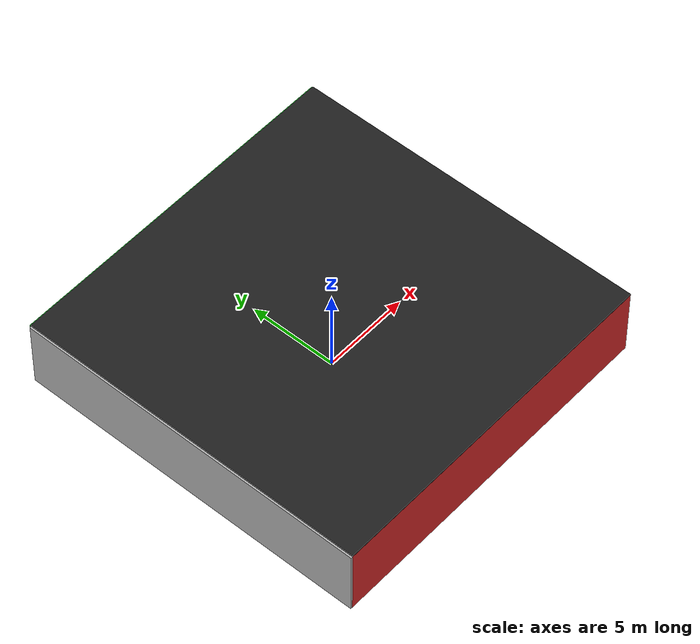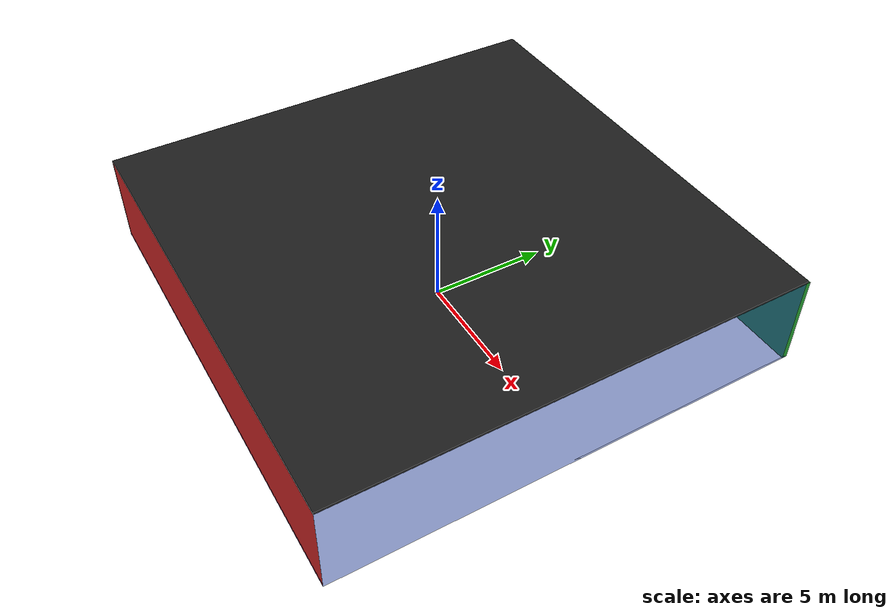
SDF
<sdf version="1.4">
 <world name="default">
  <physics type="ode">
   <max_step_size>0.001</max_step_size>
   <real_time_factor>1</real_time_factor>
   <real_time_update_rate>1000</real_time_update_rate>
   <gravity>0 0 -9.8</gravity>
  </physics>
  <scene><ambient>0.4 0.4 0.4 1</ambient><background>0.7 0.7 0.7 1</background><shadows>1</shadows></scene>
  <model name="Surrounding">
   <static>1</static>
   <link name="Ceiling">
    <collision name="Ceiling_Collision"><geometry><box><size>20 20 0.1</size></box></geometry></collision>
    <visual name="Ceiling_Visual">
     <geometry><box><size>20 20 0.1</size></box></geometry>
     <material>
      <script><uri>file://media/materials/scripts/gazebo.material</uri><name>Gazebo/FlatBlack</name></script>
     </material>
    </visual>
    <pose>0 0 4.05 0 0 0</pose>
   </link>
   <link name="Wall_South">
    <collision name="Wall_South_Collision">
     <geometry><box><size>20 0 4</size></box></geometry>
     <pose>0 0 2 0 -0 0</pose>
    </collision>
    <visual name="Wall_South_Visual">
     <pose>0 0 2 0 -0 0</pose>
     <geometry><box><size>20 0 4</size></box></geometry>
     <material>
      <script><uri>file://media/materials/scripts/gazebo.material</uri><name>Gazebo/Red</name></script>
     </material>
    </visual>
    <velocity_decay><linear>0</linear><angular>0</angular></velocity_decay>
    <pose>0 -10 0 0 -0 0</pose>
   </link>
   <link name="Wall_East">
    <collision name="Wall_21_Collision">
     <geometry><box><size>20 0 4</size></box></geometry>
     <pose>0 0 2 0 -0 0</pose>
    </collision>
    <visual name="Wall_21_Visual">
     <pose>0 0 2 0 -0 0</pose>
     <geometry><box><size>20 0 4</size></box></geometry>
     <material>
      <script><uri>file://media/materials/scripts/gazebo.material</uri><name>Gazebo/BlueTransparent</name></script>
     </material>
    </visual>
    <velocity_decay><linear>0</linear><angular>0</angular></velocity_decay>
    <pose>10 0 0 0 -0 1.5708</pose>
   </link>
   <link name="Wall_North">
    <collision name="Wall_22_Collision">
     <geometry><box><size>20 0.2 4</size></box></geometry>
     <pose>0 0 2 0 -0 0</pose>
    </collision>
    <visual name="Wall_22_Visual">
     <pose>0 0 2 0 -0 0</pose>
     <geometry><box><size>20 0.2 4</size></box></geometry>
     <material>
      <script><uri>file://media/materials/scripts/gazebo.material</uri><name>Gazebo/Green</name></script>
     </material>
    </visual>
    <velocity_decay><linear>0</linear><angular>0</angular></velocity_decay>
    <pose>0 10 0 0 -0 0</pose>
   </link>
   <link name="Wall_West">
    <collision name="Wall_23_Collision">
     <geometry><box><size>20 0.2 4</size></box></geometry>
     <pose>0 0 2 0 -0 0</pose>
    </collision>
    <visual name="Wall_23_Visual">
     <pose>0 0 2 0 -0 0</pose>
     <geometry><box><size>20 0.2 4</size></box></geometry>
     <material>
      <script><uri>file://media/materials/scripts/gazebo.material</uri><name>Gazebo/LightOff</name></script>
     </material>
    </visual>
    <velocity_decay><linear>0</linear><angular>0</angular></velocity_decay>
    <pose>-10 0 0 0 0 -1.5708</pose>
   </link>
   <link name="Ground_link">
    <collision name="collision">
     <pose>0 0 .05 0 -0 0</pose>
     <geometry><box><size>20 20 0.1</size></box></geometry>
    </collision>
    <visual name="visual">
     <pose>0 0 .05 0 -0 0</pose>
     <geometry><box><size>20 20 0.1</size></box></geometry>
     <material>
      <script><uri>file://media/materials/scripts/gazebo.material</uri><name>Gazebo/BlueTransparent</name></script>
     </material>
    </visual>
   </link>
   <static>1</static>
  </model>
  <spherical_coordinates>
   <surface_model>EARTH_WGS84</surface_model>
   <latitude_deg>0</latitude_deg>
   <longitude_deg>0</longitude_deg>
   <elevation>0</elevation>
   <heading_deg>0</heading_deg>
  </spherical_coordinates>
  <light name="lightball_0" type="diffuse">
   <diffuse>0.8 0.8 0.8 1</diffuse>
   <specular>0.2 0.2 0.2 1</specular>
   <attenuation>
    <range>100</range>
    <constant>0.7</constant>
    <linear>0.01</linear>
    <quadratic>0.001</quadratic>
   </attenuation>
   <direction>-0.5 0.1 -0.9</direction>
   <pose>-8.88074326365 4.90073605051 2.21530852857 0 0 0</pose>
  </light>
  <light name="lightball_1" type="diffuse">
   <diffuse>0.8 0.8 0.8 1</diffuse>
   <specular>0.2 0.2 0.2 1</specular>
   <attenuation>
    <range>100</range>
    <constant>0.7</constant>
    <linear>0.01</linear>
    <quadratic>0.001</quadratic>
   </attenuation>
   <direction>-0.5 0.1 -0.9</direction>
   <pose>-7.17872975619 7.90429247485 1.23019009181 0 0 0</pose>
  </light>
  <light name="lightball_2" type="diffuse">
   <diffuse>0.8 0.8 0.8 1</diffuse>
   <specular>0.2 0.2 0.2 1</specular>
   <attenuation>
    <range>100</range>
    <constant>0.7</constant>
    <linear>0.01</linear>
    <quadratic>0.001</quadratic>
   </attenuation>
   <direction>-0.5 0.1 -0.9</direction>
   <pose>9.9652614825 3.06464979167 2.44051601712 0 0 0</pose>
  </light>
  <light name="lightball_3" type="diffuse">
   <diffuse>0.8 0.8 0.8 1</diffuse>
   <specular>0.2 0.2 0.2 1</specular>
   <attenuation>
    <range>100</range>
    <constant>0.7</constant>
    <linear>0.01</linear>
    <quadratic>0.001</quadratic>
   </attenuation>
   <direction>-0.5 0.1 -0.9</direction>
   <pose>-5.00684570293 5.8220607521 1.28207042817 0 0 0</pose>
  </light>
  <light name="lightball_4" type="diffuse">
   <diffuse>0.8 0.8 0.8 1</diffuse>
   <specular>0.2 0.2 0.2 1</specular>
   <attenuation>
    <range>100</range>
    <constant>0.7</constant>
    <linear>0.01</linear>
    <quadratic>0.001</quadratic>
   </attenuation>
   <direction>-0.5 0.1 -0.9</direction>
   <pose>5.06308697375 3.51844112401 2.59139829326 0 0 0</pose>
  </light>
  <include>
   <uri>model://construction_cone</uri>
   <pose>-8.18905903232 -6.85209737734 0 0 0 2.92070712674</pose>
  </include>
  <include>
   <uri>model://robocup_3Dsim_goal</uri>
   <pose>-1.03340355467 -3.7352509652 0 0 0 0.727950823471</pose>
  </include>
  <include>
   <uri>model://construction_cone</uri>
   <pose>2.02133002733 -4.7413719937 0 0 0 2.83511846008</pose>
  </include>
  <include><uri>model://cabinet</uri><pose>1.45684958677 -1.42000302741 0 0 0 0.161300939979</pose></include>
  <include><uri>model://cabinet</uri><pose>1.23470209181 4.36417788833 0 0 0 0.403057650508</pose></include>
 </world>
</sdf>

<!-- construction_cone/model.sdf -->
<sdf version="1.5">
  <model name="Construction Cone">
    <link name="link">
      <collision name="collision">
        <geometry>
          <mesh>
            <scale>10 10 10</scale>
            <uri>file://isr-testbed/construction_cone/meshes/construction_cone.dae</uri>
          </mesh>
        </geometry>
      </collision>
      <visual name="visual">
        <geometry>
          <mesh>
            <scale>10 10 10</scale>
            <uri>file://isr-testbed/construction_cone/meshes/construction_cone.dae</uri>
          </mesh>
        </geometry>
      </visual>
    </link>
  </model>
</sdf>

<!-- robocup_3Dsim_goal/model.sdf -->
<sdf version="1.5">
  <model name="robocup_3d_goal">
    <static>true</static>
    <link name="left_post">
      <pose>0 1.05 0.45 0 0 0</pose>
      <collision name="collision">
        <geometry>
          <cylinder>
            <radius>0.05</radius>
            <length>0.9</length>
          </cylinder>
        </geometry>
      </collision>
      <visual name="visual">
        <geometry>
          <cylinder>
            <radius>0.05</radius>
            <length>0.9</length>
          </cylinder>
        </geometry>
        <material>
          <script>
            <uri>file://media/materials/scripts/gazebo.material</uri>
            <name>Gazebo/ZincYellow</name>
          </script>
        </material>
      </visual>
    </link>
    <link name="left_support_horiz_lower">
      <pose>0.30 1.05 0.01 0 0 0</pose>
      <collision name="collision">
        <geometry>
          <box>
            <size>0.50 0.02 0.02</size>
          </box>
        </geometry>
      </collision>
      <visual name="visual">
        <geometry>
          <box>
            <size>0.50 0.02 0.02</size>
          </box>
        </geometry>
        <material>
          <script>
            <uri>file://media/materials/scripts/gazebo.material</uri>
            <name>Gazebo/White</name>
          </script>
        </material>
      </visual>
    </link>
    <link name="left_support_horiz_upper">
      <pose>0.30 1.05 0.79 0 0 0</pose>
      <collision name="collision">
        <geometry>
          <box>
            <size>0.50 0.02 0.02</size>
          </box>
        </geometry>
      </collision>
      <visual name="visual">
        <geometry>
          <box>
            <size>0.50 0.02 0.02</size>
          </box>
        </geometry>
        <material>
          <script>
            <uri>file://media/materials/scripts/gazebo.material</uri>
            <name>Gazebo/White</name>
          </script>
        </material>
      </visual>
    </link>
    <link name="left_support_vertical">
      <pose>0.56 1.05 0.4 0 1.5708 0</pose>
      <collision name="collision">
        <geometry>
          <box>
            <size>0.80 0.02 0.02</size>
          </box>
        </geometry>
      </collision>
      <visual name="visual">
        <geometry>
          <box>
            <size>0.80 0.02 0.02</size>
          </box>
        </geometry>
        <material>
          <script>
            <uri>file://media/materials/scripts/gazebo.material</uri>
            <name>Gazebo/White</name>
          </script>
        </material>
      </visual>
    </link>
    <link name="right_support_horiz_lower">
      <pose>0.30 -1.05 0.01 0 0 0</pose>
      <collision name="collision">
        <geometry>
          <box>
            <size>0.50 0.02 0.02</size>
          </box>
        </geometry>
      </collision>
      <visual name="visual">
        <geometry>
          <box>
            <size>0.50 0.02 0.02</size>
          </box>
        </geometry>
        <material>
          <script>
            <uri>file://media/materials/scripts/gazebo.material</uri>
            <name>Gazebo/White</name>
          </script>
        </material>
      </visual>
    </link>
    <link name="right_support_horiz_upper">
      <pose>0.30 -1.05 0.79 0 0 0</pose>
      <collision name="collision">
        <geometry>
          <box>
            <size>0.50 0.02 0.02</size>
          </box>
        </geometry>
      </collision>
      <visual name="visual">
        <geometry>
          <box>
            <size>0.50 0.02 0.02</size>
          </box>
        </geometry>
        <material>
          <script>
            <uri>file://media/materials/scripts/gazebo.material</uri>
            <name>Gazebo/White</name>
          </script>
        </material>
      </visual>
    </link>
    <link name="right_support_vertical">
      <pose>0.56 -1.05 0.4 0 1.5708 0</pose>
      <collision name="collision">
        <geometry>
          <box>
            <size>0.80 0.02 0.02</size>
          </box>
        </geometry>
      </collision>
      <visual name="visual">
        <geometry>
          <box>
            <size>0.80 0.02 0.02</size>
          </box>
        </geometry>
        <material>
          <script>
            <uri>file://media/materials/scripts/gazebo.material</uri>
            <name>Gazebo/White</name>
          </script>
        </material>
      </visual>
    </link>
    <link name="center_support_horiz_lower">
      <pose>0.56 0 0.01 0 1.5708 0</pose>
      <collision name="collision">
        <geometry>
          <box>
            <size>0.02 2.08 0.02</size>
          </box>
        </geometry>
      </collision>
      <visual name="visual">
        <geometry>
          <box>
            <size>0.02 2.08 0.02</size>
          </box>
        </geometry>
        <material>
          <script>
            <uri>file://media/materials/scripts/gazebo.material</uri>
            <name>Gazebo/White</name>
          </script>
        </material>
      </visual>
    </link>
    <link name="center_support_horiz_upper">
      <pose>0.56 0 0.79 0 1.5708 0</pose>
      <collision name="collision">
        <geometry>
          <box>
            <size>0.02 2.08 0.02</size>
          </box>
        </geometry>
      </collision>
      <visual name="visual">
        <geometry>
          <box>
            <size>0.02 2.08 0.02</size>
          </box>
        </geometry>
        <material>
          <script>
            <uri>file://media/materials/scripts/gazebo.material</uri>
            <name>Gazebo/White</name>
          </script>
        </material>
      </visual>
    </link>
    <link name="right_post">
      <pose>0 -1.05 0.45 0 0 0</pose>
      <collision name="collision">
        <geometry>
          <cylinder>
            <radius>0.05</radius>
            <length>0.9</length>
          </cylinder>
        </geometry>
      </collision>
      <visual name="visual">
        <geometry>
          <cylinder>
            <radius>0.05</radius>
            <length>0.9</length>
          </cylinder>
        </geometry>
        <material>
          <script>
            <uri>file://media/materials/scripts/gazebo.material</uri>
            <name>Gazebo/ZincYellow</name>
          </script>
        </material>
      </visual>
    </link>
    <link name="crossbar">
      <pose>0 0 0.85 1.57 1.57 0</pose>
      <collision name="collision">
        <geometry>
          <cylinder>
            <radius>0.05</radius>
            <length>2.0</length>
          </cylinder>
        </geometry>
      </collision>
      <visual name="visual">
        <geometry>
          <cylinder>
            <radius>0.05</radius>
            <length>2.0</length>
          </cylinder>
        </geometry>
        <material>
          <script>
            <uri>file://media/materials/scripts/gazebo.material</uri>
            <name>Gazebo/ZincYellow</name>
          </script>
        </material>
      </visual>
    </link>
    <link name="center_net">
      <pose>0.56 0 0.40 0 0 0</pose>
      <collision name="collision">
        <geometry>
          <box>
            <size>0.01 2.1 0.80</size>
          </box>
        </geometry>
      </collision>
      <visual name="visual">
        <geometry>
          <box>
            <size>0.01 2.1 0.80</size>
          </box>
        </geometry>
        <material>
          <script>
            <uri>model://../model_source/models/robocup09_spl_field/materials/scripts/</uri>
            <uri>model://../model_source/models/robocup09_spl_field/materials/textures/</uri>
            <name>RoboCup/Net</name>
          </script>
        </material>
      </visual>
    </link>
    <link name="left_net">
      <pose>0.30 1.05 0.40 0 0 0</pose>
      <collision name="collision">
        <geometry>
          <box>
            <size>0.50 0.01 0.76</size>
          </box>
        </geometry>
      </collision>
      <visual name="visual">
        <geometry>
          <box>
            <size>0.50 0.01 0.76</size>
          </box>
        </geometry>
        <material>
          <script>
            <uri>model://../model_source/models/robocup09_spl_field/materials/scripts/</uri>
            <uri>model://../model_source/models/robocup09_spl_field/materials/textures/</uri>
            <name>RoboCup/Net</name>
          </script>
        </material>
      </visual>
    </link>
    <link name="right_net">
      <pose>0.30 -1.05 0.40 0 0 0</pose>
      <collision name="collision">
        <geometry>
          <box>
            <size>0.50 0.01 0.76</size>
          </box>
        </geometry>
      </collision>
      <visual name="visual">
        <geometry>
          <box>
            <size>0.50 0.01 0.76</size>
          </box>
        </geometry>
        <material>
          <script>
            <uri>model://../model_source/models/robocup09_spl_field/materials/scripts/</uri>
            <uri>model://../model_source/models/robocup09_spl_field/materials/textures/</uri>
            <name>RoboCup/Net</name>
          </script>
        </material>
      </visual>
    </link>
  </model>
</sdf>

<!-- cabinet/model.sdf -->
<sdf version="1.5">
  <model name="cabinet">
    <static>true</static>
    <link name="cabinet_bottom_plate">
      <inertial>
        <pose>0 0 -1 0 0 0</pose>
        <inertia>
          <ixx>2.050000</ixx>
          <ixy>0</ixy>
          <ixz>0</ixz>
          <iyy>2.050000</iyy>
          <iyz>0</iyz>
          <izz>2.050000</izz>
        </inertia>
        <mass>25.000000</mass>
      </inertial>
      <collision name="cabinet_bottom_plate_geom">
        <pose>0 0 0.010000 0 0 0</pose>
        <geometry>
          <box>
            <size>0.450000 0.450000 0.020000</size>
          </box>
        </geometry>
      </collision>
      <visual name="cabinet_bottom_plate_geom_visual">
        <pose>0 0 0.010000 0 0 0</pose>
        <geometry>
          <box>
            <size>0.450000 0.450000 0.020000</size>
          </box>
        </geometry>
        <material>
          <script>
            <uri>model://media/materials/scripts/gazebo.material</uri>
            <name>Gazebo/Wood</name>
          </script>
        </material>
      </visual>
      <collision name="cabinet_bottom_plate_geom_cabinet_back_plate">
        <pose>0.235000 0 0.510000 0 0 0</pose>
        <geometry>
          <box>
            <size>0.020000 0.450000 1.020000</size>
          </box>
        </geometry>
      </collision>
      <visual name="cabinet_bottom_plate_geom_cabinet_back_plate_visual">
        <pose>0.235000 0 0.510000 0 0 0</pose>
        <geometry>
          <box>
            <size>0.020000 0.450000 1.020000</size>
          </box>
        </geometry>
        <material>
          <script>
            <uri>model://media/materials/scripts/gazebo.material</uri>
            <name>Gazebo/Wood</name>
          </script>
        </material>
      </visual>
      <collision name="cabinet_bottom_plate_geom_cabinet_left_plate">
        <pose>0 0.235000 0.510000 0 0 0</pose>
        <geometry>
          <box>
            <size>0.450000 0.020000 1.020000</size>
          </box>
        </geometry>
      </collision>
      <visual name="cabinet_bottom_plate_geom_cabinet_left_plate_visual">
        <pose>0 0.235000 0.510000 0 0 0</pose>
        <geometry>
          <box>
            <size>0.450000 0.020000 1.020000</size>
          </box>
        </geometry>
        <material>
          <script>
            <uri>model://media/materials/scripts/gazebo.material</uri>
            <name>Gazebo/Wood</name>
          </script>
        </material>
      </visual>
      <collision name="cabinet_bottom_plate_geom_cabinet_middle_plate">
        <pose>0 0 0.510000 0 0 0</pose>
        <geometry>
          <box>
            <size>0.450000 0.450000 0.020000</size>
          </box>
        </geometry>
      </collision>
      <visual name="cabinet_bottom_plate_geom_cabinet_middle_plate_visual">
        <pose>0 0 0.510000 0 0 0</pose>
        <geometry>
          <box>
            <size>0.450000 0.450000 0.020000</size>
          </box>
        </geometry>
        <material>
          <script>
            <uri>model://media/materials/scripts/gazebo.material</uri>
            <name>Gazebo/Wood</name>
          </script>
        </material>
      </visual>
      <collision name="cabinet_bottom_plate_geom_cabinet_right_plate">
        <pose>0 -0.235000 0.510000 0 0 0</pose>
        <geometry>
          <box>
            <size>0.450000 0.020000 1.020000</size>
          </box>
        </geometry>
      </collision>
      <visual name="cabinet_bottom_plate_geom_cabinet_right_plate_visual">
        <pose>0 -0.235000 0.510000 0 0 0</pose>
        <geometry>
          <box>
            <size>0.450000 0.020000 1.020000</size>
          </box>
        </geometry>
        <material>
          <script>
            <uri>model://media/materials/scripts/gazebo.material</uri>
            <name>Gazebo/Wood</name>
          </script>
        </material>
      </visual>
      <collision name="cabinet_bottom_plate_geom_cabinet_top_plate">
        <pose>0 0 1.010000 0 0 0</pose>
        <geometry>
          <box>
            <size>0.450000 0.450000 0.020000</size>
          </box>
        </geometry>
      </collision>
      <visual name="cabinet_bottom_plate_geom_cabinet_top_plate_visual">
        <pose>0 0 1.010000 0 0 0</pose>
        <geometry>
          <box>
            <size>0.450000 0.450000 0.020000</size>
          </box>
        </geometry>
        <material>
          <script>
            <uri>model://media/materials/scripts/gazebo.material</uri>
            <name>Gazebo/Wood</name>
          </script>
        </material>
      </visual>
    </link>
  </model>
</sdf>
